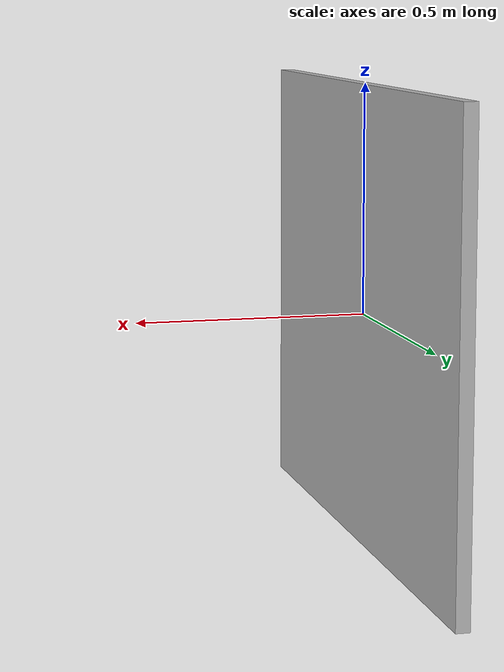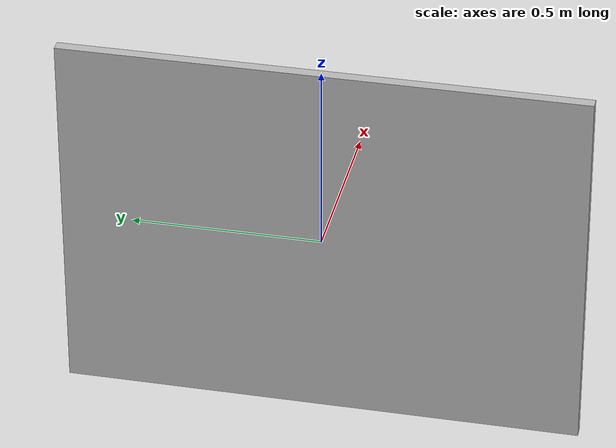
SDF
<?xml version="1.0"?>
<sdf version='1.4'>
  <model name='ufrgs_poster'>
    <link name="link">
      <visual name="visual">
        <geometry>
          <box>
            <size>0.03 1.37 1</size>
          </box>
        </geometry>
        <material>
          <script>
            <uri>model://ufrgs_poster/material/script</uri>
            <uri>model://ufrgs_poster/material/textures</uri>
            <name>Custom/ufrgs_logo</name>
          </script>
        </material>
      </visual>
    </link>
    <static>1</static>
    <allow_auto_disable>1</allow_auto_disable>
  </model>
</sdf>
